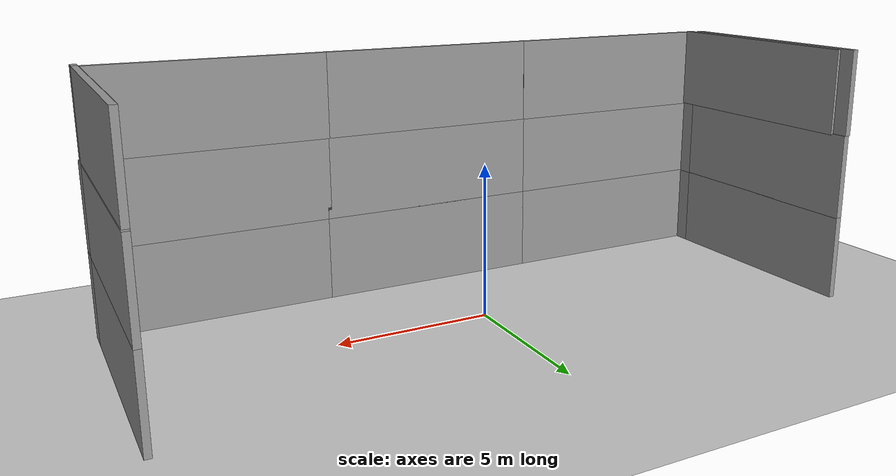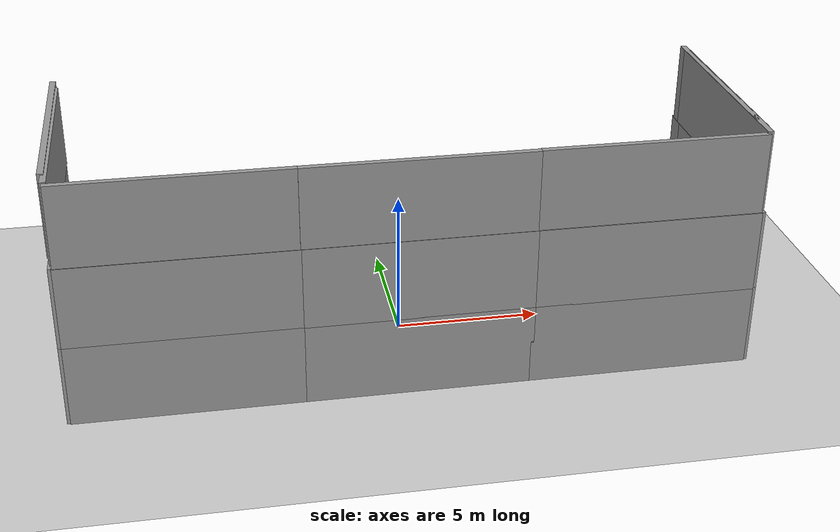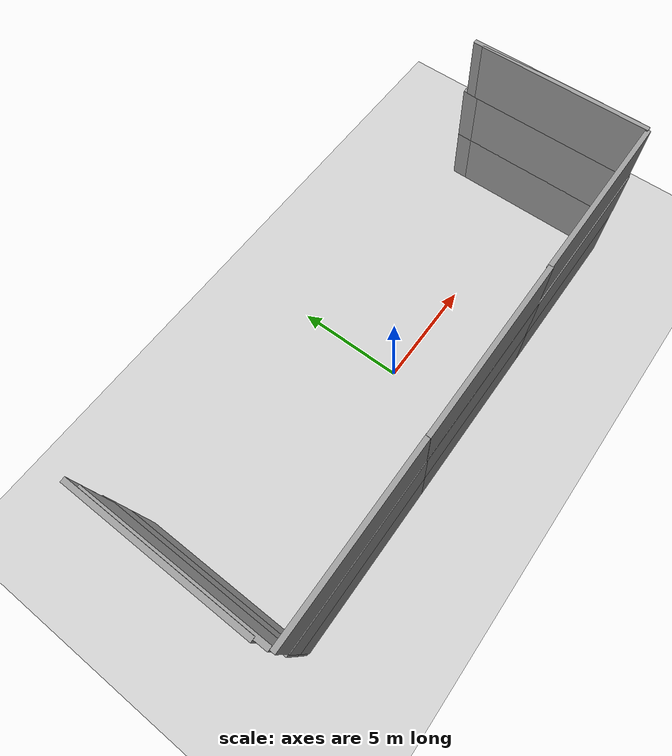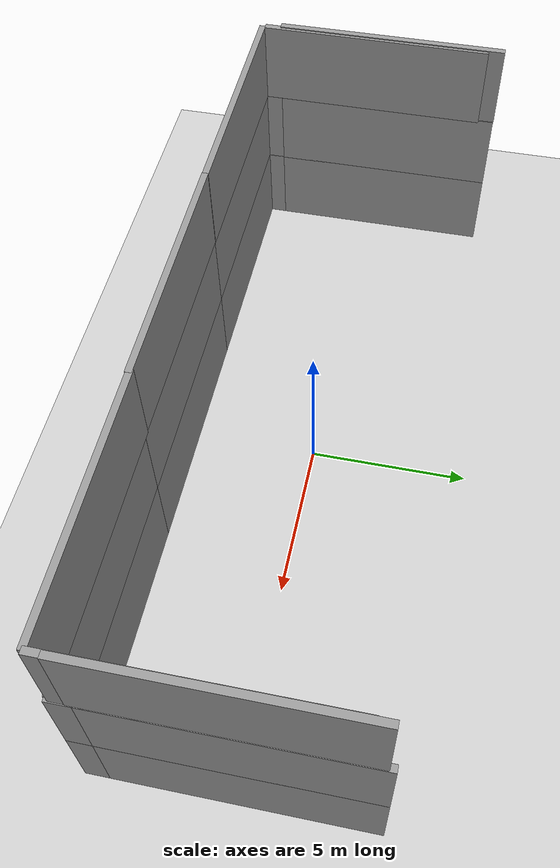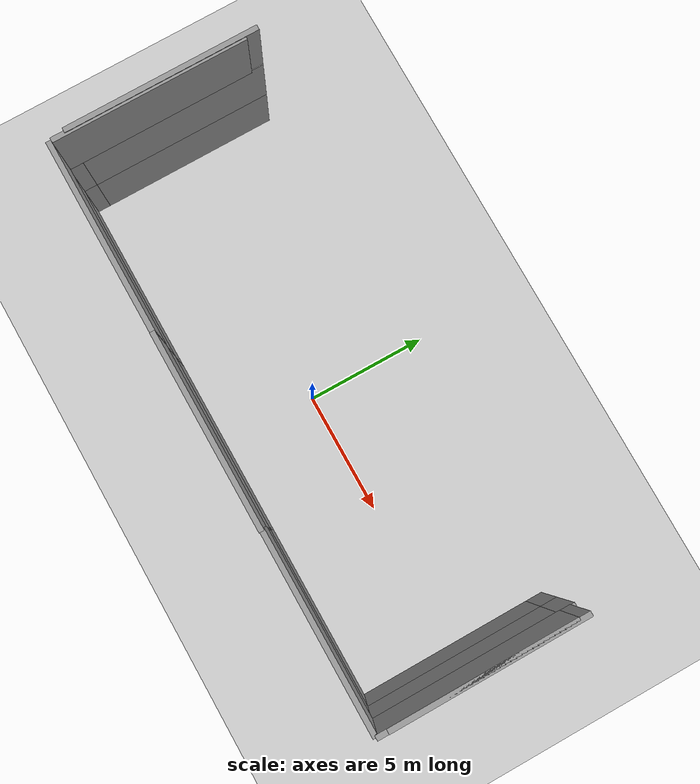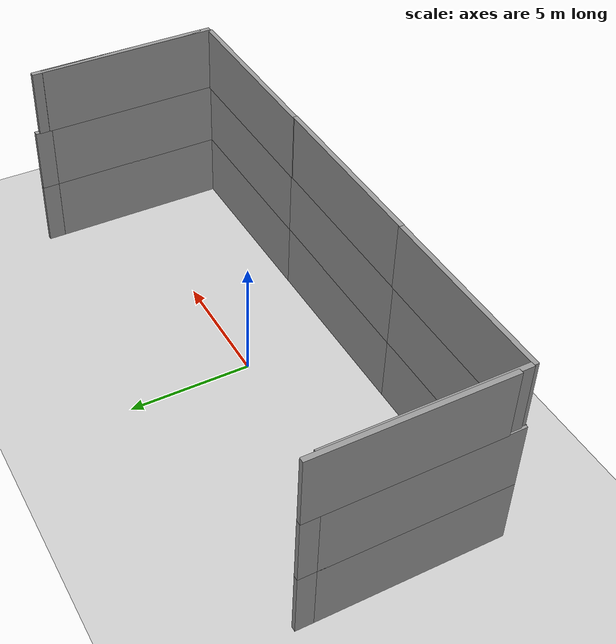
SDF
<sdf version="1.6">
 <world name="default">
  <model name="ground_plane">
   <static>1</static>
   <link name="link">
    <collision name="collision">
     <geometry><plane><normal>0 0 1</normal><size>100 100</size></plane></geometry>
     <surface>
      <contact><collide_bitmask>65535</collide_bitmask></contact>
      <friction><ode><mu>100</mu><mu2>50</mu2></ode></friction>
     </surface>
    </collision>
    <visual name="visual">
     <cast_shadows>0</cast_shadows>
     <geometry><plane><normal>0 0 1</normal><size>100 100</size></plane></geometry>
     <material>
      <script><uri>file://media/materials/scripts/gazebo.material</uri><name>Gazebo/Grey</name></script>
     </material>
    </visual>
   </link>
  </model>
  <model name="grey wall 2">
   <static>1</static>
   <link name="link">
    <pose>0 0 1.4 0 -0 0</pose>
    <collision name="collision"><geometry><box><size>7.5 0.2 2.8</size></box></geometry></collision>
    <visual name="visual">
     <cast_shadows>0</cast_shadows>
     <geometry><box><size>7.5 0.2 2.8</size></box></geometry>
     <material>
      <script>
       <uri>model://grey_wall/materials/scripts</uri>
       <uri>model://grey_wall/materials/textures</uri>
       <name>vrc/grey_wall</name>
      </script>
     </material>
    </visual>
   </link>
   <pose>0.05 -4 0 0 -0 0</pose>
  </model>
  <model name="grey wall 4">
   <static>1</static>
   <link name="link">
    <pose>0 0 1.4 0 -0 0</pose>
    <collision name="collision"><geometry><box><size>7.5 0.2 2.8</size></box></geometry></collision>
    <visual name="visual">
     <cast_shadows>0</cast_shadows>
     <geometry><box><size>7.5 0.2 2.8</size></box></geometry>
     <material>
      <script>
       <uri>model://grey_wall/materials/scripts</uri>
       <uri>model://grey_wall/materials/textures</uri>
       <name>vrc/grey_wall</name>
      </script>
     </material>
    </visual>
   </link>
   <pose>0.05 -4 2.78 0 -0 0</pose>
  </model>
  <model name="grey wall 6">
   <static>1</static>
   <link name="link">
    <pose>0 0 1.4 0 -0 0</pose>
    <collision name="collision"><geometry><box><size>7.5 0.2 2.8</size></box></geometry></collision>
    <visual name="visual">
     <cast_shadows>0</cast_shadows>
     <geometry><box><size>7.5 0.2 2.8</size></box></geometry>
     <material>
      <script>
       <uri>model://grey_wall/materials/scripts</uri>
       <uri>model://grey_wall/materials/textures</uri>
       <name>vrc/grey_wall</name>
      </script>
     </material>
    </visual>
   </link>
   <pose>7.44 -4 0 0 -0 0</pose>
  </model>
  <model name="grey wall 8">
   <static>1</static>
   <link name="link">
    <pose>0 0 1.4 0 -0 0</pose>
    <collision name="collision"><geometry><box><size>7.5 0.2 2.8</size></box></geometry></collision>
    <visual name="visual">
     <cast_shadows>0</cast_shadows>
     <geometry><box><size>7.5 0.2 2.8</size></box></geometry>
     <material>
      <script>
       <uri>model://grey_wall/materials/scripts</uri>
       <uri>model://grey_wall/materials/textures</uri>
       <name>vrc/grey_wall</name>
      </script>
     </material>
    </visual>
   </link>
   <pose>7.44 -4 2.78 0 -0 0</pose>
  </model>
  <model name="grey wall 10">
   <static>1</static>
   <link name="link">
    <pose>0 0 1.4 0 -0 0</pose>
    <collision name="collision"><geometry><box><size>7.5 0.2 2.8</size></box></geometry></collision>
    <visual name="visual">
     <cast_shadows>0</cast_shadows>
     <geometry><box><size>7.5 0.2 2.8</size></box></geometry>
     <material>
      <script>
       <uri>model://grey_wall/materials/scripts</uri>
       <uri>model://grey_wall/materials/textures</uri>
       <name>vrc/grey_wall</name>
      </script>
     </material>
    </visual>
   </link>
   <pose>-7.44 -4 0 0 -0 0</pose>
  </model>
  <model name="grey wall 12">
   <static>1</static>
   <link name="link">
    <pose>0 0 1.4 0 -0 0</pose>
    <collision name="collision"><geometry><box><size>7.5 0.2 2.8</size></box></geometry></collision>
    <visual name="visual">
     <cast_shadows>0</cast_shadows>
     <geometry><box><size>7.5 0.2 2.8</size></box></geometry>
     <material>
      <script>
       <uri>model://grey_wall/materials/scripts</uri>
       <uri>model://grey_wall/materials/textures</uri>
       <name>vrc/grey_wall</name>
      </script>
     </material>
    </visual>
   </link>
   <pose>-7.44 -4 2.78 0 -0 0</pose>
  </model>
  <model name="grey wall 13">
   <static>1</static>
   <link name="link">
    <pose>0 0 1.4 0 -0 0</pose>
    <collision name="collision"><geometry><box><size>7.5 0.2 2.8</size></box></geometry></collision>
    <visual name="visual">
     <cast_shadows>0</cast_shadows>
     <geometry><box><size>7.5 0.2 2.8</size></box></geometry>
     <material>
      <script>
       <uri>model://grey_wall/materials/scripts</uri>
       <uri>model://grey_wall/materials/textures</uri>
       <name>vrc/grey_wall</name>
      </script>
     </material>
    </visual>
   </link>
   <pose>11.2 0.39 0 0 0 -1.57</pose>
  </model>
  <model name="grey wall 14">
   <static>1</static>
   <link name="link">
    <pose>0 0 1.4 0 -0 0</pose>
    <collision name="collision"><geometry><box><size>7.5 0.2 2.8</size></box></geometry></collision>
    <visual name="visual">
     <cast_shadows>0</cast_shadows>
     <geometry><box><size>7.5 0.2 2.8</size></box></geometry>
     <material>
      <script>
       <uri>model://grey_wall/materials/scripts</uri>
       <uri>model://grey_wall/materials/textures</uri>
       <name>vrc/grey_wall</name>
      </script>
     </material>
    </visual>
   </link>
   <pose>11.2 -0.314 0 0 0 -1.57</pose>
  </model>
  <model name="grey wall 15">
   <static>1</static>
   <link name="link">
    <pose>0 0 1.4 0 -0 0</pose>
    <collision name="collision"><geometry><box><size>7.5 0.2 2.8</size></box></geometry></collision>
    <visual name="visual">
     <cast_shadows>0</cast_shadows>
     <geometry><box><size>7.5 0.2 2.8</size></box></geometry>
     <material>
      <script>
       <uri>model://grey_wall/materials/scripts</uri>
       <uri>model://grey_wall/materials/textures</uri>
       <name>vrc/grey_wall</name>
      </script>
     </material>
    </visual>
   </link>
   <pose>-11.2 0.39 0 0 0 -1.57</pose>
  </model>
  <model name="grey wall 16">
   <static>1</static>
   <link name="link">
    <pose>0 0 1.4 0 -0 0</pose>
    <collision name="collision"><geometry><box><size>7.5 0.2 2.8</size></box></geometry></collision>
    <visual name="visual">
     <cast_shadows>0</cast_shadows>
     <geometry><box><size>7.5 0.2 2.8</size></box></geometry>
     <material>
      <script>
       <uri>model://grey_wall/materials/scripts</uri>
       <uri>model://grey_wall/materials/textures</uri>
       <name>vrc/grey_wall</name>
      </script>
     </material>
    </visual>
   </link>
   <pose>-11.2 -0.314 0 0 0 -1.57</pose>
  </model>
  <model name="grey wall 17">
   <static>1</static>
   <link name="link">
    <pose>0 0 1.4 0 -0 0</pose>
    <collision name="collision"><geometry><box><size>7.5 0.2 2.8</size></box></geometry></collision>
    <visual name="visual">
     <cast_shadows>0</cast_shadows>
     <geometry><box><size>7.5 0.2 2.8</size></box></geometry>
     <material>
      <script>
       <uri>model://grey_wall/materials/scripts</uri>
       <uri>model://grey_wall/materials/textures</uri>
       <name>vrc/grey_wall</name>
      </script>
     </material>
    </visual>
   </link>
   <pose>11.2 0.39 2.78 0 0 -1.57</pose>
  </model>
  <model name="grey wall 18">
   <static>1</static>
   <link name="link">
    <pose>0 0 1.4 0 -0 0</pose>
    <collision name="collision"><geometry><box><size>7.5 0.2 2.8</size></box></geometry></collision>
    <visual name="visual">
     <cast_shadows>0</cast_shadows>
     <geometry><box><size>7.5 0.2 2.8</size></box></geometry>
     <material>
      <script>
       <uri>model://grey_wall/materials/scripts</uri>
       <uri>model://grey_wall/materials/textures</uri>
       <name>vrc/grey_wall</name>
      </script>
     </material>
    </visual>
   </link>
   <pose>11.2 -0.314 2.78 0 0 -1.57</pose>
  </model>
  <model name="grey wall 19">
   <static>1</static>
   <link name="link">
    <pose>0 0 1.4 0 -0 0</pose>
    <collision name="collision"><geometry><box><size>7.5 0.2 2.8</size></box></geometry></collision>
    <visual name="visual">
     <cast_shadows>0</cast_shadows>
     <geometry><box><size>7.5 0.2 2.8</size></box></geometry>
     <material>
      <script>
       <uri>model://grey_wall/materials/scripts</uri>
       <uri>model://grey_wall/materials/textures</uri>
       <name>vrc/grey_wall</name>
      </script>
     </material>
    </visual>
   </link>
   <pose>-11.2 0.39 2.78 0 0 -1.57</pose>
  </model>
  <model name="grey wall 20">
   <static>1</static>
   <link name="link">
    <pose>0 0 1.4 0 -0 0</pose>
    <collision name="collision"><geometry><box><size>7.5 0.2 2.8</size></box></geometry></collision>
    <visual name="visual">
     <cast_shadows>0</cast_shadows>
     <geometry><box><size>7.5 0.2 2.8</size></box></geometry>
     <material>
      <script>
       <uri>model://grey_wall/materials/scripts</uri>
       <uri>model://grey_wall/materials/textures</uri>
       <name>vrc/grey_wall</name>
      </script>
     </material>
    </visual>
   </link>
   <pose>-11.2 -0.314 2.78 0 0 -1.57</pose>
  </model>
  <model name="grey wall 18_clone">
   <static>1</static>
   <link name="link">
    <pose>0 0 1.4 0 -0 0</pose>
    <collision name="collision"><geometry><box><size>7.5 0.2 2.8</size></box></geometry></collision>
    <visual name="visual">
     <cast_shadows>0</cast_shadows>
     <geometry><box><size>7.5 0.2 2.8</size></box></geometry>
     <material>
      <script>
       <uri>model://grey_wall/materials/scripts</uri>
       <uri>model://grey_wall/materials/textures</uri>
       <name>vrc/grey_wall</name>
      </script>
     </material>
    </visual>
   </link>
   <pose>11.1814 0.216817 5.56829 0 0 -1.57</pose>
  </model>
  <model name="grey wall 8_clone">
   <static>1</static>
   <link name="link">
    <pose>0 0 1.4 0 -0 0</pose>
    <collision name="collision"><geometry><box><size>7.5 0.2 2.8</size></box></geometry></collision>
    <visual name="visual">
     <cast_shadows>0</cast_shadows>
     <geometry><box><size>7.5 0.2 2.8</size></box></geometry>
     <material>
      <script>
       <uri>model://grey_wall/materials/scripts</uri>
       <uri>model://grey_wall/materials/textures</uri>
       <name>vrc/grey_wall</name>
      </script>
     </material>
    </visual>
   </link>
   <pose>7.41958 -3.95582 5.51114 0 -0 0</pose>
  </model>
  <model name="grey wall 4_clone">
   <static>1</static>
   <link name="link">
    <pose>0 0 1.4 0 -0 0</pose>
    <collision name="collision"><geometry><box><size>7.5 0.2 2.8</size></box></geometry></collision>
    <visual name="visual">
     <cast_shadows>0</cast_shadows>
     <geometry><box><size>7.5 0.2 2.8</size></box></geometry>
     <material>
      <script>
       <uri>model://grey_wall/materials/scripts</uri>
       <uri>model://grey_wall/materials/textures</uri>
       <name>vrc/grey_wall</name>
      </script>
     </material>
    </visual>
   </link>
   <pose>0.024303 -3.98156 5.51127 0 -0 0</pose>
  </model>
  <model name="grey wall 4_clone_clone">
   <static>1</static>
   <link name="link">
    <pose>0 0 1.4 0 -0 0</pose>
    <collision name="collision"><geometry><box><size>7.5 0.2 2.8</size></box></geometry></collision>
    <visual name="visual">
     <cast_shadows>0</cast_shadows>
     <geometry><box><size>7.5 0.2 2.8</size></box></geometry>
     <material>
      <script>
       <uri>model://grey_wall/materials/scripts</uri>
       <uri>model://grey_wall/materials/textures</uri>
       <name>vrc/grey_wall</name>
      </script>
     </material>
    </visual>
   </link>
   <pose>-7.41942 -3.972 5.5094 0 -0 0</pose>
  </model>
  <model name="grey wall 19_clone">
   <static>1</static>
   <link name="link">
    <pose>0 0 1.4 0 -0 0</pose>
    <collision name="collision"><geometry><box><size>7.5 0.2 2.8</size></box></geometry></collision>
    <visual name="visual">
     <cast_shadows>0</cast_shadows>
     <geometry><box><size>7.5 0.2 2.8</size></box></geometry>
     <material>
      <script>
       <uri>model://grey_wall/materials/scripts</uri>
       <uri>model://grey_wall/materials/textures</uri>
       <name>vrc/grey_wall</name>
      </script>
     </material>
    </visual>
   </link>
   <pose>-11.1378 -0.117973 5.54172 0 0 -1.57</pose>
  </model>
  <model name="grey wall 19_clone_clone">
   <static>1</static>
   <link name="link">
    <pose>0 0 1.4 0 -0 0</pose>
    <collision name="collision"><geometry><box><size>7.5 0.2 2.8</size></box></geometry></collision>
    <visual name="visual">
     <cast_shadows>0</cast_shadows>
     <geometry><box><size>7.5 0.2 2.8</size></box></geometry>
     <material>
      <script>
       <uri>model://grey_wall/materials/scripts</uri>
       <uri>model://grey_wall/materials/textures</uri>
       <name>vrc/grey_wall</name>
      </script>
     </material>
    </visual>
   </link>
   <pose>-11.2319 0.402239 5.57989 0 0 -1.57</pose>
  </model>
  <model name="grey wall 18_clone_clone">
   <static>1</static>
   <link name="link">
    <pose>0 0 1.4 0 -0 0</pose>
    <collision name="collision"><geometry><box><size>7.5 0.2 2.8</size></box></geometry></collision>
    <visual name="visual">
     <cast_shadows>0</cast_shadows>
     <geometry><box><size>7.5 0.2 2.8</size></box></geometry>
     <material>
      <script>
       <uri>model://grey_wall/materials/scripts</uri>
       <uri>model://grey_wall/materials/textures</uri>
       <name>vrc/grey_wall</name>
      </script>
     </material>
    </visual>
   </link>
   <pose>11.1718 -0.203309 5.56829 0 0 -1.57</pose>
  </model>
 </world>
</sdf>
